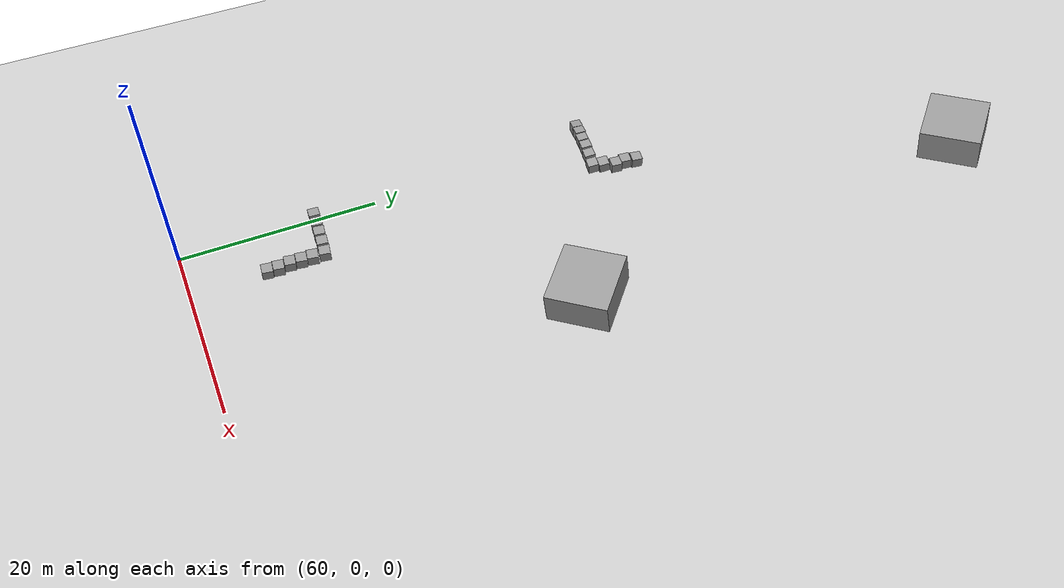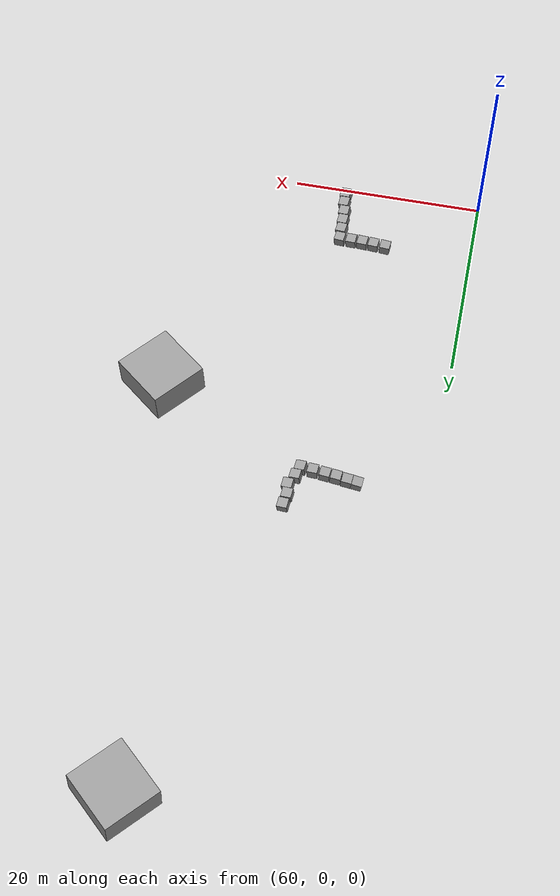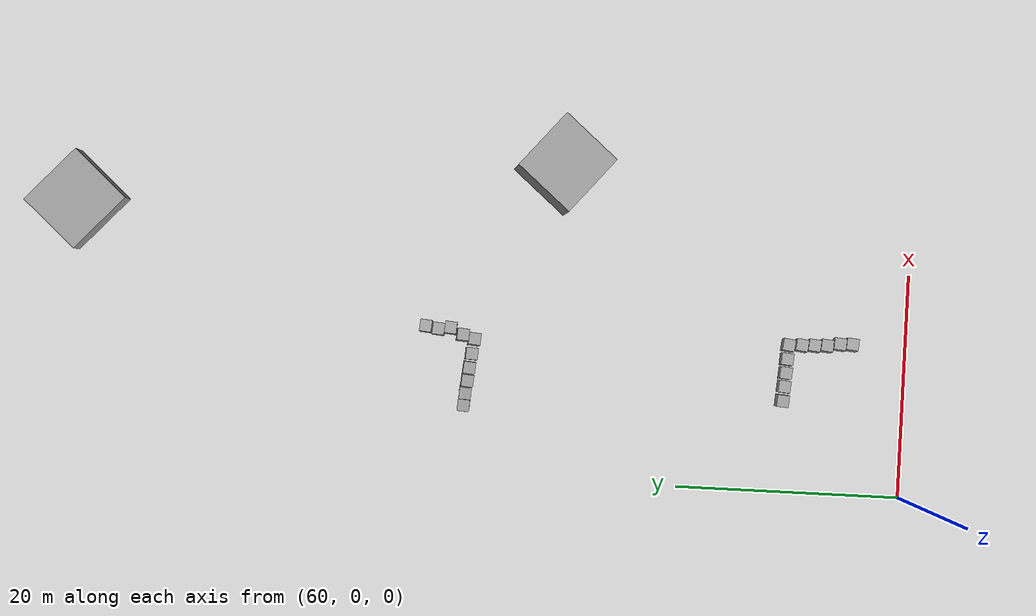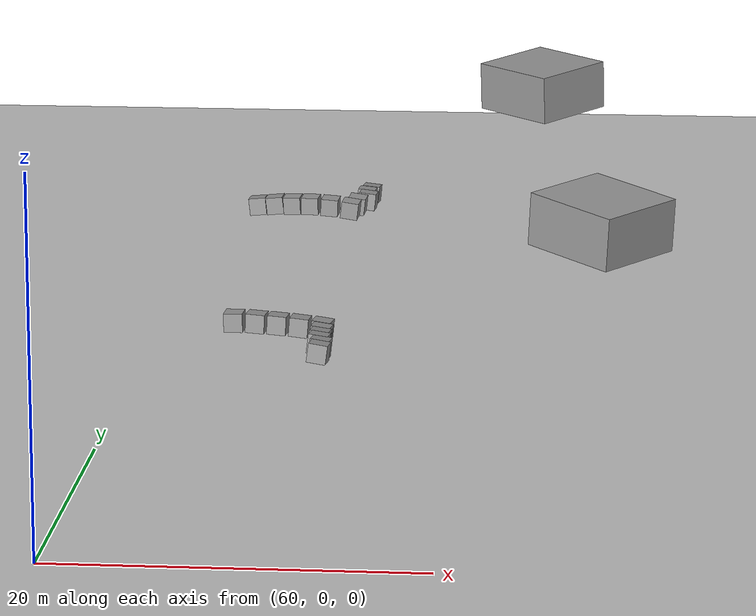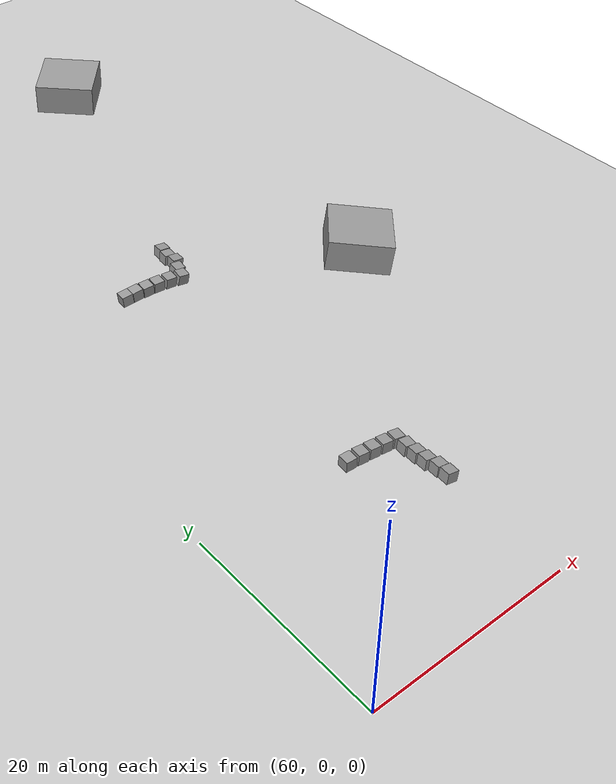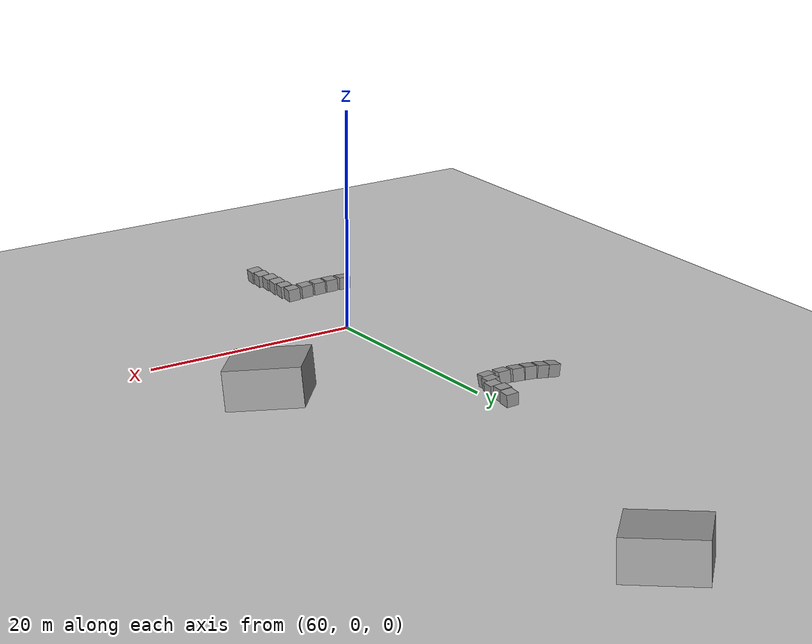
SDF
<sdf version="1.7">
 <world name="default">
  <model name="ground_plane">
   <static>1</static>
   <link name="link">
    <collision name="collision">
     <geometry><plane><normal>0 0 1</normal><size>100 100</size></plane></geometry>
     <surface>
      <contact><collide_bitmask>65535</collide_bitmask></contact>
      <friction><ode><mu>100</mu><mu2>50</mu2></ode></friction>
     </surface>
    </collision>
    <visual name="visual">
     <cast_shadows>0</cast_shadows>
     <geometry><plane><normal>0 0 1</normal><size>100 100</size></plane></geometry>
     <material>
      <script><uri>model://media/materials/scripts/gazebo.material</uri><name>Gazebo/Grey</name></script>
     </material>
    </visual>
   </link>
  </model>
  <model name="unit_box">
   <pose>68.683 12.6807 9.39434 0.028135 -0.018894 -0.069517</pose>
   <link name="link">
    <inertial>
     <mass>1</mass>
     <inertia>
      <ixx>0.166667</ixx>
      <ixy>0</ixy>
      <ixz>0</ixz>
      <iyy>0.166667</iyy>
      <iyz>0</iyz>
      <izz>0.166667</izz>
     </inertia>
    </inertial>
    <collision name="collision"><geometry><box><size>1 1 1</size></box></geometry></collision>
    <visual name="visual">
     <geometry><box><size>1 1 1</size></box></geometry>
     <material>
      <script><name>Gazebo/Grey</name><uri>model://media/materials/scripts/gazebo.material</uri></script>
     </material>
    </visual>
   </link>
  </model>
  <model name="unit_box_clone">
   <pose>69.8607 12.5972 9.38373 0.00256 0.049683 -0.108081</pose>
   <link name="link">
    <inertial>
     <mass>1</mass>
     <inertia>
      <ixx>0.166667</ixx>
      <ixy>0</ixy>
      <ixz>0</ixz>
      <iyy>0.166667</iyy>
      <iyz>0</iyz>
      <izz>0.166667</izz>
     </inertia>
    </inertial>
    <collision name="collision"><geometry><box><size>1 1 1</size></box></geometry></collision>
    <visual name="visual">
     <geometry><box><size>1 1 1</size></box></geometry>
     <material>
      <script><name>Gazebo/Grey</name><uri>model://media/materials/scripts/gazebo.material</uri></script>
     </material>
    </visual>
   </link>
  </model>
  <model name="unit_box_clone_0">
   <pose>71.0002 12.5136 9.33105 -0.01171 0.057871 -0.106792</pose>
   <link name="link">
    <inertial>
     <mass>1</mass>
     <inertia>
      <ixx>0.166667</ixx>
      <ixy>0</ixy>
      <ixz>0</ixz>
      <iyy>0.166667</iyy>
      <iyz>0</iyz>
      <izz>0.166667</izz>
     </inertia>
    </inertial>
    <collision name="collision"><geometry><box><size>1 1 1</size></box></geometry></collision>
    <visual name="visual">
     <geometry><box><size>1 1 1</size></box></geometry>
     <material>
      <script><name>Gazebo/Grey</name><uri>model://media/materials/scripts/gazebo.material</uri></script>
     </material>
    </visual>
   </link>
  </model>
  <model name="unit_box_clone_1">
   <pose>72.1546 12.4357 9.25079 -0.007363 0.086048 -0.091708</pose>
   <link name="link">
    <inertial>
     <mass>1</mass>
     <inertia>
      <ixx>0.166667</ixx>
      <ixy>0</ixy>
      <ixz>0</ixz>
      <iyy>0.166667</iyy>
      <iyz>0</iyz>
      <izz>0.166667</izz>
     </inertia>
    </inertial>
    <collision name="collision"><geometry><box><size>1 1 1</size></box></geometry></collision>
    <visual name="visual">
     <geometry><box><size>1 1 1</size></box></geometry>
     <material>
      <script><name>Gazebo/Grey</name><uri>model://media/materials/scripts/gazebo.material</uri></script>
     </material>
    </visual>
   </link>
  </model>
  <model name="unit_box_clone_2">
   <pose>73.3352 12.3385 9.14023 0.000104 0.106019 -0.135502</pose>
   <link name="link">
    <inertial>
     <mass>1</mass>
     <inertia>
      <ixx>0.166667</ixx>
      <ixy>0</ixy>
      <ixz>0</ixz>
      <iyy>0.166667</iyy>
      <iyz>0</iyz>
      <izz>0.166667</izz>
     </inertia>
    </inertial>
    <collision name="collision"><geometry><box><size>1 1 1</size></box></geometry></collision>
    <visual name="visual">
     <geometry><box><size>1 1 1</size></box></geometry>
     <material>
      <script><name>Gazebo/Grey</name><uri>model://media/materials/scripts/gazebo.material</uri></script>
     </material>
    </visual>
   </link>
  </model>
  <model name="unit_box_clone_3">
   <pose>73.3745 11.2171 9.14442 -0.023391 0.115334 -0.129855</pose>
   <link name="link">
    <inertial>
     <mass>1</mass>
     <inertia>
      <ixx>0.166667</ixx>
      <ixy>0</ixy>
      <ixz>0</ixz>
      <iyy>0.166667</iyy>
      <iyz>0</iyz>
      <izz>0.166667</izz>
     </inertia>
    </inertial>
    <collision name="collision"><geometry><box><size>1 1 1</size></box></geometry></collision>
    <visual name="visual">
     <geometry><box><size>1 1 1</size></box></geometry>
     <material>
      <script><name>Gazebo/Grey</name><uri>model://media/materials/scripts/gazebo.material</uri></script>
     </material>
    </visual>
   </link>
  </model>
  <model name="unit_box_clone_4">
   <pose>73.4055 10.1594 9.18744 -0.066216 0.111199 -0.110442</pose>
   <link name="link">
    <inertial>
     <mass>1</mass>
     <inertia>
      <ixx>0.166667</ixx>
      <ixy>0</ixy>
      <ixz>0</ixz>
      <iyy>0.166667</iyy>
      <iyz>0</iyz>
      <izz>0.166667</izz>
     </inertia>
    </inertial>
    <collision name="collision"><geometry><box><size>1 1 1</size></box></geometry></collision>
    <visual name="visual">
     <geometry><box><size>1 1 1</size></box></geometry>
     <material>
      <script><name>Gazebo/Grey</name><uri>model://media/materials/scripts/gazebo.material</uri></script>
     </material>
    </visual>
   </link>
  </model>
  <model name="unit_box_clone_5">
   <pose>73.4405 9.12498 9.24614 -0.058132 0.122236 -0.11105</pose>
   <link name="link">
    <inertial>
     <mass>1</mass>
     <inertia>
      <ixx>0.166667</ixx>
      <ixy>0</ixy>
      <ixz>0</ixz>
      <iyy>0.166667</iyy>
      <iyz>0</iyz>
      <izz>0.166667</izz>
     </inertia>
    </inertial>
    <collision name="collision"><geometry><box><size>1 1 1</size></box></geometry></collision>
    <visual name="visual">
     <geometry><box><size>1 1 1</size></box></geometry>
     <material>
      <script><name>Gazebo/Grey</name><uri>model://media/materials/scripts/gazebo.material</uri></script>
     </material>
    </visual>
   </link>
  </model>
  <model name="unit_box_clone_6">
   <pose>73.6249 8.06438 9.27849 -0.053196 0.112539 -0.100493</pose>
   <link name="link">
    <inertial>
     <mass>1</mass>
     <inertia>
      <ixx>0.166667</ixx>
      <ixy>0</ixy>
      <ixz>0</ixz>
      <iyy>0.166667</iyy>
      <iyz>0</iyz>
      <izz>0.166667</izz>
     </inertia>
    </inertial>
    <collision name="collision"><geometry><box><size>1 1 1</size></box></geometry></collision>
    <visual name="visual">
     <geometry><box><size>1 1 1</size></box></geometry>
     <material>
      <script><name>Gazebo/Grey</name><uri>model://media/materials/scripts/gazebo.material</uri></script>
     </material>
    </visual>
   </link>
  </model>
  <model name="unit_box_clone_7">
   <pose>73.6398 7.04826 9.31946 -0.031428 0.134697 -0.10185</pose>
   <link name="link">
    <inertial>
     <mass>1</mass>
     <inertia>
      <ixx>0.166667</ixx>
      <ixy>0</ixy>
      <ixz>0</ixz>
      <iyy>0.166667</iyy>
      <iyz>0</iyz>
      <izz>0.166667</izz>
     </inertia>
    </inertial>
    <collision name="collision"><geometry><box><size>1 1 1</size></box></geometry></collision>
    <visual name="visual">
     <geometry><box><size>1 1 1</size></box></geometry>
     <material>
      <script><name>Gazebo/Grey</name><uri>model://media/materials/scripts/gazebo.material</uri></script>
     </material>
    </visual>
   </link>
  </model>
  <model name="unit_box_clone_26">
   <pose>67.0388 39.3488 9.46147 -0.012972 -0.10712 -0.075365</pose>
   <link name="link">
    <inertial>
     <mass>1</mass>
     <inertia>
      <ixx>0.166667</ixx>
      <ixy>0</ixy>
      <ixz>0</ixz>
      <iyy>0.166667</iyy>
      <iyz>0</iyz>
      <izz>0.166667</izz>
     </inertia>
    </inertial>
    <collision name="collision"><geometry><box><size>1 1 1</size></box></geometry></collision>
    <visual name="visual">
     <geometry><box><size>1 1 1</size></box></geometry>
     <material>
      <script><name>Gazebo/Grey</name><uri>model://media/materials/scripts/gazebo.material</uri></script>
     </material>
    </visual>
   </link>
  </model>
  <model name="unit_box_clone_27">
   <pose>68.0498 39.2716 9.55354 0.021646 -0.110176 -0.057932</pose>
   <link name="link">
    <inertial>
     <mass>1</mass>
     <inertia>
      <ixx>0.166667</ixx>
      <ixy>0</ixy>
      <ixz>0</ixz>
      <iyy>0.166667</iyy>
      <iyz>0</iyz>
      <izz>0.166667</izz>
     </inertia>
    </inertial>
    <collision name="collision"><geometry><box><size>1 1 1</size></box></geometry></collision>
    <visual name="visual">
     <geometry><box><size>1 1 1</size></box></geometry>
     <material>
      <script><name>Gazebo/Grey</name><uri>model://media/materials/scripts/gazebo.material</uri></script>
     </material>
    </visual>
   </link>
  </model>
  <model name="unit_box_clone_29">
   <pose>69.088 39.1387 9.61071 0.065019 -0.042453 -0.086767</pose>
   <link name="link">
    <inertial>
     <mass>1</mass>
     <inertia>
      <ixx>0.166667</ixx>
      <ixy>0</ixy>
      <ixz>0</ixz>
      <iyy>0.166667</iyy>
      <iyz>0</iyz>
      <izz>0.166667</izz>
     </inertia>
    </inertial>
    <collision name="collision"><geometry><box><size>1 1 1</size></box></geometry></collision>
    <visual name="visual">
     <geometry><box><size>1 1 1</size></box></geometry>
     <material>
      <script><name>Gazebo/Grey</name><uri>model://media/materials/scripts/gazebo.material</uri></script>
     </material>
    </visual>
   </link>
  </model>
  <model name="unit_box_clone_30">
   <pose>70.157 39.0361 9.63676 0.06571 -0.004735 -0.094509</pose>
   <link name="link">
    <inertial>
     <mass>1</mass>
     <inertia>
      <ixx>0.166667</ixx>
      <ixy>0</ixy>
      <ixz>0</ixz>
      <iyy>0.166667</iyy>
      <iyz>0</iyz>
      <izz>0.166667</izz>
     </inertia>
    </inertial>
    <collision name="collision"><geometry><box><size>1 1 1</size></box></geometry></collision>
    <visual name="visual">
     <geometry><box><size>1 1 1</size></box></geometry>
     <material>
      <script><name>Gazebo/Grey</name><uri>model://media/materials/scripts/gazebo.material</uri></script>
     </material>
    </visual>
   </link>
  </model>
  <model name="unit_box_clone_31">
   <pose>71.3254 38.8876 9.60293 0.079652 0.057374 -0.073691</pose>
   <link name="link">
    <inertial>
     <mass>1</mass>
     <inertia>
      <ixx>0.166667</ixx>
      <ixy>0</ixy>
      <ixz>0</ixz>
      <iyy>0.166667</iyy>
      <iyz>0</iyz>
      <izz>0.166667</izz>
     </inertia>
    </inertial>
    <collision name="collision"><geometry><box><size>1 1 1</size></box></geometry></collision>
    <visual name="visual">
     <geometry><box><size>1 1 1</size></box></geometry>
     <material>
      <script><name>Gazebo/Grey</name><uri>model://media/materials/scripts/gazebo.material</uri></script>
     </material>
    </visual>
   </link>
  </model>
  <model name="unit_box_clone_32">
   <pose>72.534 38.7152 9.4869 0.088542 0.132653 -0.083617</pose>
   <link name="link">
    <inertial>
     <mass>1</mass>
     <inertia>
      <ixx>0.166667</ixx>
      <ixy>0</ixy>
      <ixz>0</ixz>
      <iyy>0.166667</iyy>
      <iyz>0</iyz>
      <izz>0.166667</izz>
     </inertia>
    </inertial>
    <collision name="collision"><geometry><box><size>1 1 1</size></box></geometry></collision>
    <visual name="visual">
     <geometry><box><size>1 1 1</size></box></geometry>
     <material>
      <script><name>Gazebo/Grey</name><uri>model://media/materials/scripts/gazebo.material</uri></script>
     </material>
    </visual>
   </link>
  </model>
  <model name="unit_box_clone_40">
   <pose>72.8541 39.6944 9.54092 0.086908 0.126496 -0.076384</pose>
   <link name="link">
    <inertial>
     <mass>1</mass>
     <inertia>
      <ixx>0.166667</ixx>
      <ixy>0</ixy>
      <ixz>0</ixz>
      <iyy>0.166667</iyy>
      <iyz>0</iyz>
      <izz>0.166667</izz>
     </inertia>
    </inertial>
    <collision name="collision"><geometry><box><size>1 1 1</size></box></geometry></collision>
    <visual name="visual">
     <geometry><box><size>1 1 1</size></box></geometry>
     <material>
      <script><name>Gazebo/Grey</name><uri>model://media/materials/scripts/gazebo.material</uri></script>
     </material>
    </visual>
   </link>
  </model>
  <model name="unit_box_clone_41">
   <pose>73.3961 40.7275 9.56624 -0.009901 0.108572 -0.082229</pose>
   <link name="link">
    <inertial>
     <mass>1</mass>
     <inertia>
      <ixx>0.166667</ixx>
      <ixy>0</ixy>
      <ixz>0</ixz>
      <iyy>0.166667</iyy>
      <iyz>0</iyz>
      <izz>0.166667</izz>
     </inertia>
    </inertial>
    <collision name="collision"><geometry><box><size>1 1 1</size></box></geometry></collision>
    <visual name="visual">
     <geometry><box><size>1 1 1</size></box></geometry>
     <material>
      <script><name>Gazebo/Grey</name><uri>model://media/materials/scripts/gazebo.material</uri></script>
     </material>
    </visual>
   </link>
  </model>
  <model name="unit_box_clone_42">
   <pose>73.2638 41.7416 9.56513 -0.00988 0.087404 -0.082018</pose>
   <link name="link">
    <inertial>
     <mass>1</mass>
     <inertia>
      <ixx>0.166667</ixx>
      <ixy>0</ixy>
      <ixz>0</ixz>
      <iyy>0.166667</iyy>
      <iyz>0</iyz>
      <izz>0.166667</izz>
     </inertia>
    </inertial>
    <collision name="collision"><geometry><box><size>1 1 1</size></box></geometry></collision>
    <visual name="visual">
     <geometry><box><size>1 1 1</size></box></geometry>
     <material>
      <script><name>Gazebo/Grey</name><uri>model://media/materials/scripts/gazebo.material</uri></script>
     </material>
    </visual>
   </link>
  </model>
  <model name="unit_box_clone_43">
   <pose>73.4526 42.8027 9.52573 -0.042779 0.090104 -0.089435</pose>
   <link name="link">
    <inertial>
     <mass>1</mass>
     <inertia>
      <ixx>0.166667</ixx>
      <ixy>0</ixy>
      <ixz>0</ixz>
      <iyy>0.166667</iyy>
      <iyz>0</iyz>
      <izz>0.166667</izz>
     </inertia>
    </inertial>
    <collision name="collision"><geometry><box><size>1 1 1</size></box></geometry></collision>
    <visual name="visual">
     <geometry><box><size>1 1 1</size></box></geometry>
     <material>
      <script><name>Gazebo/Grey</name><uri>model://media/materials/scripts/gazebo.material</uri></script>
     </material>
    </visual>
   </link>
  </model>
  <model name="unit_box_clone_44_clone_1_clone_clone_4">
   <pose>87.4388 31.8752 10.5714 0.102741 -0.044098 0.867711</pose>
   <link name="link">
    <inertial>
     <mass>1</mass>
     <inertia>
      <ixx>0.166667</ixx>
      <ixy>0</ixy>
      <ixz>0</ixz>
      <iyy>0.166667</iyy>
      <iyz>0</iyz>
      <izz>0.166667</izz>
     </inertia>
    </inertial>
    <collision name="collision"><geometry><box><size>5.67294 5.93826 3.10934</size></box></geometry></collision>
    <visual name="visual">
     <geometry><box><size>5.67294 5.93826 3.10934</size></box></geometry>
     <material>
      <script><name>Gazebo/Grey</name><uri>model://media/materials/scripts/gazebo.material</uri></script>
     </material>
    </visual>
   </link>
  </model>
  <model name="unit_box_clone_44_clone_1_clone_clone_5">
   <pose>82.5548 72.2219 10.4812 0.032309 -0.072329 0.828521</pose>
   <link name="link">
    <inertial>
     <mass>1</mass>
     <inertia>
      <ixx>0.166667</ixx>
      <ixy>0</ixy>
      <ixz>0</ixz>
      <iyy>0.166667</iyy>
      <iyz>0</iyz>
      <izz>0.166667</izz>
     </inertia>
    </inertial>
    <collision name="collision"><geometry><box><size>5.67294 5.93826 3.10934</size></box></geometry></collision>
    <visual name="visual">
     <geometry><box><size>5.67294 5.93826 3.10934</size></box></geometry>
     <material>
      <script><name>Gazebo/Grey</name><uri>model://media/materials/scripts/gazebo.material</uri></script>
     </material>
    </visual>
   </link>
  </model>
 </world>
</sdf>
